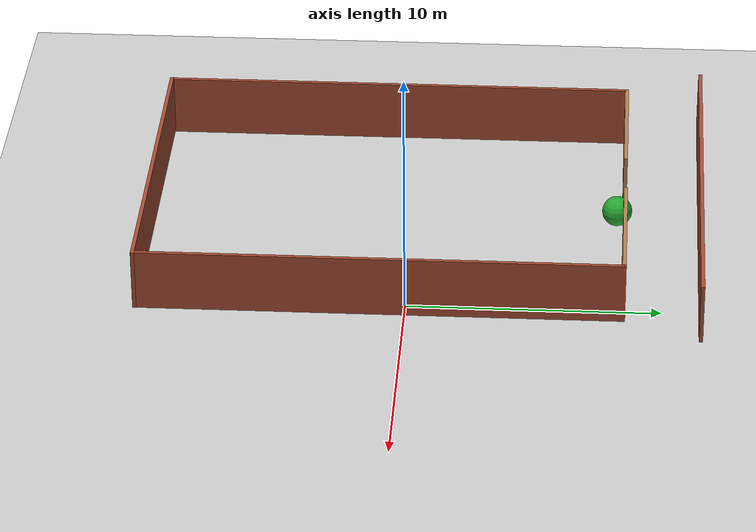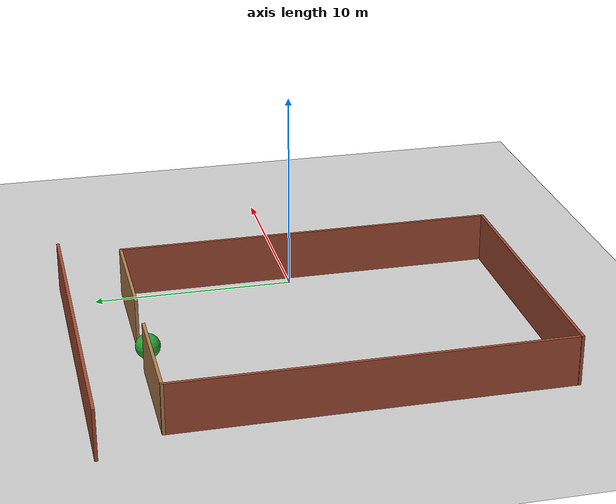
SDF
<sdf version="1.4">
 <world name="default">
  <model name="ground_plane">
   <static>1</static>
   <link name="link">
    <collision name="collision">
     <geometry><plane><normal>0 0 1</normal><size>100 100</size></plane></geometry>
     <surface><friction><ode><mu>100</mu><mu2>50</mu2></ode></friction></surface>
    </collision>
    <visual name="visual">
     <cast_shadows>0</cast_shadows>
     <geometry><plane><normal>0 0 1</normal><size>100 100</size></plane></geometry>
     <material>
      <script><uri>file://media/materials/scripts/gazebo.material</uri><name>Gazebo/Tertiary</name></script>
     </material>
    </visual>
   </link>
  </model>
  <light name="sun" type="directional">
   <pose>0 0 10 0 -0 0</pose>
   <diffuse>0.8 0.8 0.8 1</diffuse>
   <specular>0.2 0.2 0.2 1</specular>
   <attenuation>
    <range>1000</range>
    <constant>0.9</constant>
    <linear>0.01</linear>
    <quadratic>0.001</quadratic>
   </attenuation>
   <direction>-0.5 0.1 -0.9</direction>
  </light>
  <include><uri>model://open_hall2</uri><pose>-6.39 0.5 0 0 0 0</pose></include>
  <include><uri>model://goal_position</uri><pose>-6.5 8.2 0.7 0 0 0</pose></include>
 </world>
</sdf>

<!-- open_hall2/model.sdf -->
<sdf version='1.6'>
  <model name='open_hall2'>
    <pose frame=''>-6.64514 1.32245 0 0 -0 0</pose>
    <link name='Wall_0'>
      <collision name='Wall_0_Collision'>
        <geometry>
          <box>
            <size>19 0.15 2.5</size>
          </box>
        </geometry>
        <pose frame=''>0 0 1.25 0 -0 0</pose>
      </collision>
      <visual name='Wall_0_Visual'>
        <pose frame=''>0 0 1.25 0 -0 0</pose>
        <geometry>
          <box>
            <size>19 0.15 2.5</size>
          </box>
        </geometry>
        <material>
          <script>
            <uri>file://media/materials/scripts/gazebo.material</uri>
            <name>Gazebo/Bricks</name>
          </script>
          <ambient>1 1 1 1</ambient>
        </material>
        <meta>
          <layer>0</layer>
        </meta>
      </visual>
      <pose frame=''>-6.8756 -1.43863 0 0 -0 -1.5708</pose>
    </link>
    <link name='Wall_10'>
      <collision name='Wall_10_Collision'>
        <geometry>
          <box>
            <size>14 0.15 2.5</size>
          </box>
        </geometry>
        <pose frame=''>0 0 1.25 0 -0 0</pose>
      </collision>
      <visual name='Wall_10_Visual'>
        <pose frame=''>0 0 1.25 0 -0 0</pose>
        <geometry>
          <box>
            <size>14 0.15 2.5</size>
          </box>
        </geometry>
        <material>
          <script>
            <uri>file://media/materials/scripts/gazebo.material</uri>
            <name>Gazebo/Bricks</name>
          </script>
          <ambient>1 1 1 1</ambient>
        </material>
        <meta>
          <layer>0</layer>
        </meta>
      </visual>
      <pose frame=''>0.053627 -11.0312 0 0 -0 3.14159</pose>
    </link>
    <link name='Wall_12'>
      <collision name='Wall_12_Collision'>
        <geometry>
          <box>
            <size>16.75 0.15 2.5</size>
          </box>
        </geometry>
        <pose frame=''>0 0 1.25 0 -0 0</pose>
      </collision>
      <visual name='Wall_12_Visual'>
        <pose frame=''>0 0 1.25 0 -0 0</pose>
        <geometry>
          <box>
            <size>16.75 0.15 2.5</size>
          </box>
        </geometry>
        <material>
          <script>
            <uri>file://media/materials/scripts/gazebo.material</uri>
            <name>Gazebo/Bricks</name>
          </script>
          <ambient>1 1 1 1</ambient>
        </material>
        <meta>
          <layer>0</layer>
        </meta>
      </visual>
      <pose frame=''>0 11.0312 0 0 -0 0</pose>
    </link>
    <link name='Wall_2'>
      <collision name='Wall_2_Collision'>
        <geometry>
          <box>
            <size>19.1513 0.15 2.5</size>
          </box>
        </geometry>
        <pose frame=''>0 0 1.25 0 -0 0</pose>
      </collision>
      <visual name='Wall_2_Visual'>
        <pose frame=''>0 0 1.25 0 -0 0</pose>
        <geometry>
          <box>
            <size>19.1513 0.15 2.5</size>
          </box>
        </geometry>
        <material>
          <script>
            <uri>file://media/materials/scripts/gazebo.material</uri>
            <name>Gazebo/Bricks</name>
          </script>
          <ambient>1 1 1 1</ambient>
        </material>
        <meta>
          <layer>0</layer>
        </meta>
      </visual>
      <pose frame=''>6.97863 -1.48396 0 0 -0 -1.5708</pose>
    </link>
    <link name='Wall_5'>
      <collision name='Wall_5_Collision'>
        <geometry>
          <box>
            <size>5.75 0.15 2.5</size>
          </box>
        </geometry>
        <pose frame=''>0 0 1.25 0 -0 0</pose>
      </collision>
      <visual name='Wall_5_Visual'>
        <pose frame=''>0 0 1.25 0 -0 0</pose>
        <geometry>
          <box>
            <size>5.75 0.15 2.5</size>
          </box>
        </geometry>
        <material>
          <script>
            <uri>file://media/materials/scripts/gazebo.material</uri>
            <name>Gazebo/Wood</name>
          </script>
          <ambient>1 1 1 1</ambient>
        </material>
        <meta>
          <layer>0</layer>
        </meta>
      </visual>
      <pose frame=''>-4.0756 7.98637 0 0 -0 0</pose>
    </link>
    <link name='Wall_7'>
      <collision name='Wall_7_Collision'>
        <geometry>
          <box>
            <size>6 0.15 2.5</size>
          </box>
        </geometry>
        <pose frame=''>0 0 1.25 0 -0 0</pose>
      </collision>
      <visual name='Wall_7_Visual'>
        <pose frame=''>0 0 1.25 0 -0 0</pose>
        <geometry>
          <box>
            <size>6 0.15 2.5</size>
          </box>
        </geometry>
        <material>
          <script>
            <uri>file://media/materials/scripts/gazebo.material</uri>
            <name>Gazebo/Wood</name>
          </script>
          <ambient>1 1 1 1</ambient>
        </material>
        <meta>
          <layer>0</layer>
        </meta>
      </visual>
      <pose frame=''>4.05363 8.0167 0 0 -0 3.14159</pose>
    </link>
    <static>1</static>
  </model>
</sdf>

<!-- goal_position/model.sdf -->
<sdf version='1.6'>
  <model name='goal_position'>

    <link name='link_0'>
        <inertial>
          <mass>0.0001</mass>
          <inertia>
            <ixx>1e-05</ixx>
            <ixy>0</ixy>
            <ixz>0</ixz>
            <iyy>1e-05</iyy>
            <iyz>0</iyz>
            <izz>0</izz>
          </inertia>
        <pose frame=''>0 0 0 0 -0 0</pose>
      </inertial>
      <pose frame=''>2.4e-05 -1.2e-05 0 0 -0 0</pose>
      <gravity>0</gravity>
      <self_collide>0</self_collide>
      <kinematic>0</kinematic>
      <enable_wind>0</enable_wind>

      <visual name='visual'>
        <pose frame=''>0 0 0 0 -0 0</pose>
        <geometry>
          <sphere>
            <radius>0.6</radius>
          </sphere>
        </geometry>
        <material>
          <lighting>1</lighting>
          <script>
            <uri>file://media/materials/scripts/gazebo.material</uri>
            <name>Gazebo/Green</name>
          </script>
          <shader type='vertex'>
            <normal_map>__default__</normal_map>
          </shader>
          <ambient>1 0 0 1</ambient>
          <diffuse>0.2 1 0.2 1</diffuse>
          <specular>0.1 0.1 0.1 1</specular>
          <emissive>0 0 0 1</emissive>
        </material>
        <transparency>0</transparency>
        <cast_shadows>1</cast_shadows>
      </visual>

    </link>

    <static>1</static>
    <allow_auto_disable>1</allow_auto_disable>

  </model>
</sdf>
